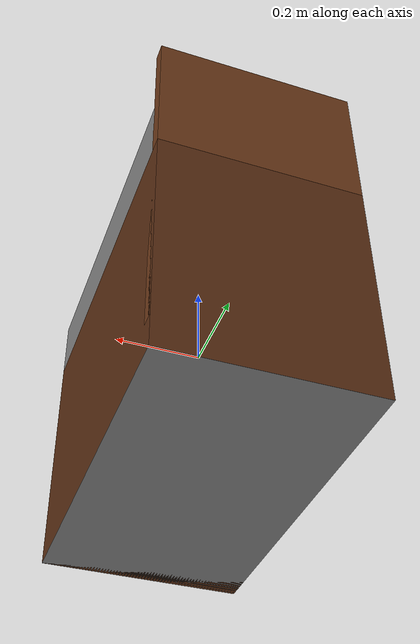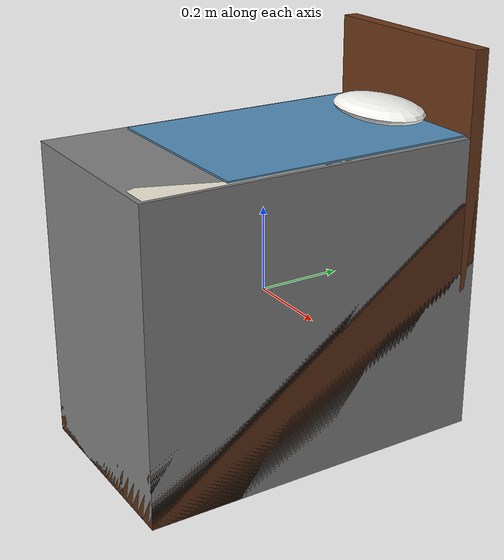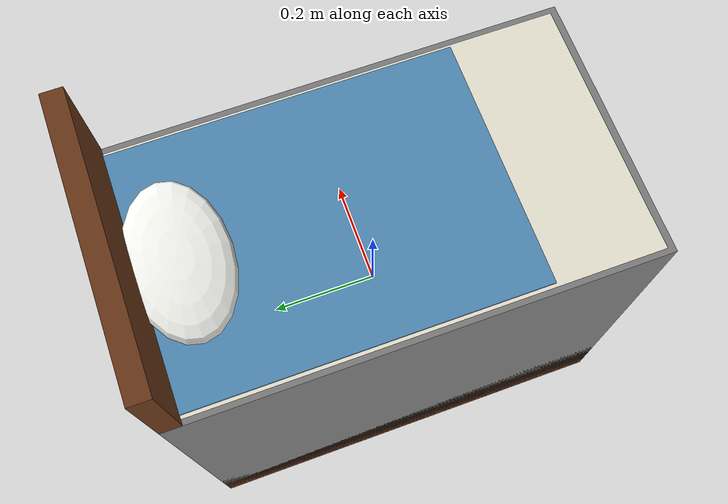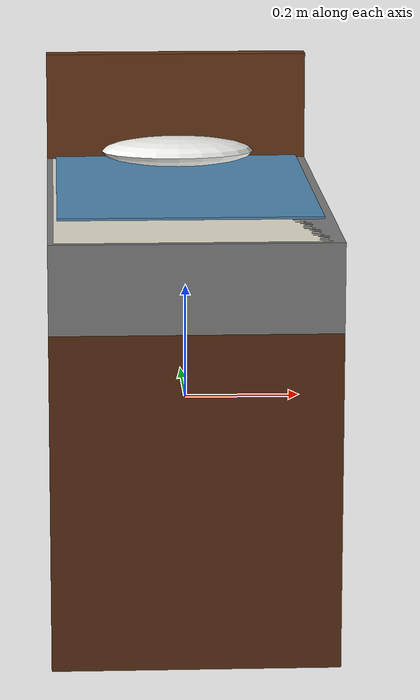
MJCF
<mujoco model="vla82_vla82_016__bed">
  <compiler angle="radian"/>
  <asset>
    <texture name="source_texture" type="2d" file="source_texture.png"/>
    <material name="source_material" texture="source_texture" rgba="1 1 1 1"/>
  </asset>
  <default>
    <default class="visual"><geom contype="0" conaffinity="0" group="1"/></default>
    <default class="collision"><geom contype="1" conaffinity="1" group="0" density="300" friction="0.65 0.006 0.0002" solref="0.02 1" solimp="0.9 0.95 0.001"/></default>
    <default class="region"><geom contype="0" conaffinity="0" group="1" rgba="0 1 0 0" mass="0"/></default>
  </default>
  <worldbody><body><body name="object">
    <geom name="bed_frame" class="visual" mass="0" type="box" pos="0 0 -0.075" size="0.240000 0.420000 0.285000" rgba="0.35 0.18 0.08 1"/>
    <geom name="bed_mattress" class="visual" mass="0" type="box" pos="0 0 0.305000" size="0.230000 0.408000 0.055" rgba="0.93 0.91 0.84 1"/>
    <geom name="bed_blanket" class="visual" mass="0" type="box" pos="0 0.090 0.361000" size="0.224000 0.310000 0.003" rgba="0.32 0.55 0.72 1"/>
    <geom name="bed_headboard" class="visual" mass="0" type="box" pos="0 0.402000 0.135" size="0.240000 0.018 0.420000" rgba="0.42 0.22 0.10 1"/>
    <geom name="bed_pillow" class="visual" mass="0" type="ellipsoid" pos="0 0.315000 0.385000" size="0.139200 0.085 0.025" rgba="0.98 0.98 0.96 1"/>
    <geom name="collision_mattress" class="collision" type="box" size="0.240000 0.420000 0.360000"/>
    <geom name="reg_bbox" class="region" type="box" pos="0 0 0" size="0.240000 0.420000 0.360000"/>
  </body></body></worldbody>
  <actuator/>
</mujoco>
